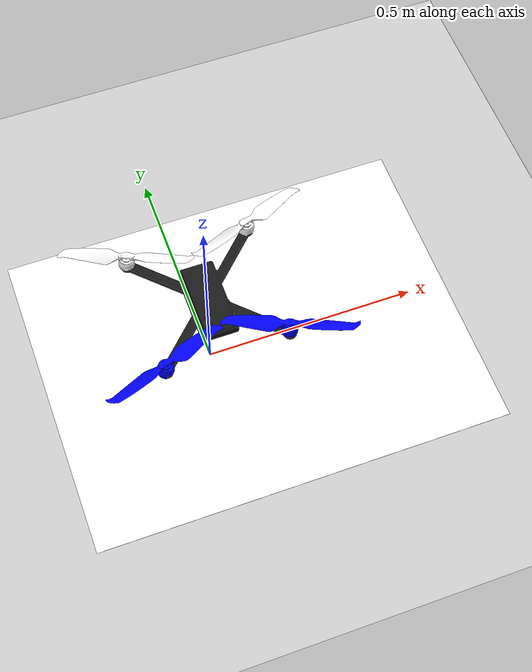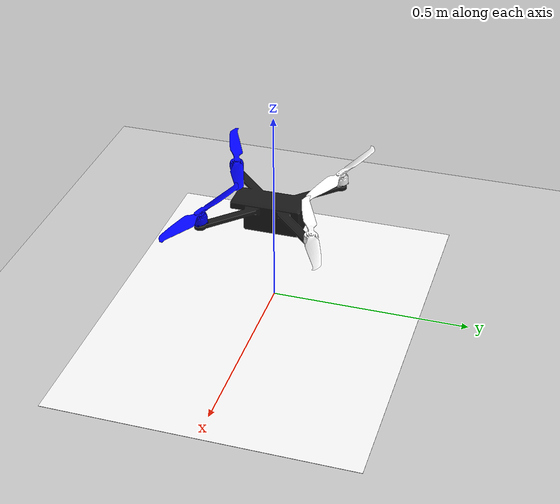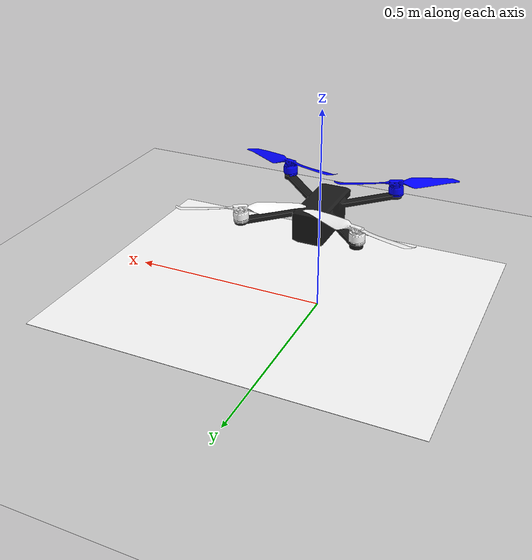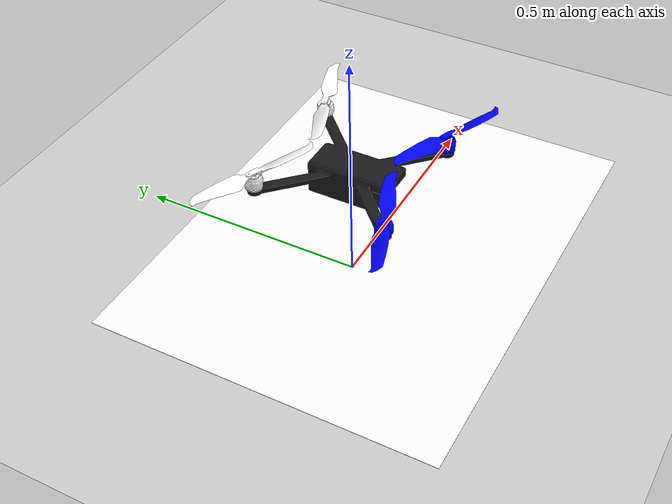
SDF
<?xml version="1.0" ?>
<sdf version="1.7">
  <world name="test_marioworld">
    <plugin filename="libignition-gazebo-physics-system.so"
      name="ignition::gazebo::systems::Physics">
    </plugin>
    <plugin filename="libignition-gazebo-user-commands-system.so"
      name="ignition::gazebo::systems::UserCommands">
    </plugin>
    <plugin filename="libignition-gazebo-scene-broadcaster-system.so"
      name="ignition::gazebo::systems::SceneBroadcaster">
    </plugin>
    <plugin filename="libignition-gazebo-imu-system.so"
      name="ignition::gazebo::systems::Imu">
    </plugin>
    <plugin filename="libignition-gazebo-navsat-system.so"
          name="ignition::gazebo::systems::NavSat">
    </plugin>
    <plugin filename="libignition-gazebo-sensors-system.so"
      name="ignition::gazebo::systems::Sensors">
    </plugin>

    <spherical_coordinates>
      <latitude_deg>-35.363262</latitude_deg>
      <longitude_deg>149.165237</longitude_deg>
      <elevation>584</elevation>
      <heading_deg>0</heading_deg>
      <surface_model>EARTH_WGS84</surface_model>
    </spherical_coordinates>

    <scene>
      <ambient>1.0 1.0 1.0</ambient>
      <background>0.8 0.8 0.8</background>
      <sky></sky>
    </scene>

    <gui fullscreen="0">

      <!-- 3D scene -->
      <plugin filename="MinimalScene" name="3D View">
        <gz-gui>
          <title>3D View</title>
          <property type="bool" key="showTitleBar">false</property>
          <property type="string" key="state">docked</property>
        </gz-gui>

        <engine>ogre2</engine>
        <scene>scene</scene>
        <ambient_light>0.4 0.4 0.4</ambient_light>
        <background_color>0.8 0.8 0.8</background_color>
        <camera_pose>-6 0 6 0 0.5 0</camera_pose>
      </plugin>

      <!-- Plugins that add functionality to the scene -->

      <!-- World control -->
      <plugin filename="WorldControl" name="World control">
        <gz-gui>
          <title>World control</title>
          <property type="bool" key="showTitleBar">false</property>
          <property type="bool" key="resizable">false</property>
          <property type="double" key="height">72</property>
          <property type="double" key="z">1</property>

          <property type="string" key="state">floating</property>
          <anchors target="3D View">
            <line own="left" target="left"/>
            <line own="bottom" target="bottom"/>
          </anchors>
        </gz-gui>

        <play_pause>true</play_pause>
        <step>true</step>
        <start_paused>true</start_paused>
        <use_event>true</use_event>

      </plugin>

      <!-- World statistics -->

      <!-- Inspector -->
      <plugin filename="ComponentInspector" name="Component inspector">
        <gz-gui>
          <property type="string" key="state">docked</property>
        </gz-gui>
      </plugin>

      <!-- Entity tree -->
      <plugin filename="EntityTree" name="Entity tree">
        <gz-gui>
          <property type="string" key="state">docked</property>
        </gz-gui>
      </plugin>

      <!-- Plugins -->
      <plugin filename="EntityContextMenuPlugin" name="Entity context menu">
        <gz-gui>
          <property key="state" type="string">floating</property>
          <property key="width" type="double">5</property>
          <property key="height" type="double">5</property>
          <property key="showTitleBar" type="bool">false</property>
        </gz-gui>
      </plugin>
      <plugin filename="GzSceneManager" name="Scene Manager">
        <gz-gui>
          <property key="resizable" type="bool">false</property>
          <property key="width" type="double">5</property>
          <property key="height" type="double">5</property>
          <property key="state" type="string">floating</property>
          <property key="showTitleBar" type="bool">false</property>
        </gz-gui>
      </plugin>
      <plugin filename="InteractiveViewControl" name="Interactive view control">
        <gz-gui>
          <property key="resizable" type="bool">false</property>
          <property key="width" type="double">5</property>
          <property key="height" type="double">5</property>
          <property key="state" type="string">floating</property>
          <property key="showTitleBar" type="bool">false</property>
        </gz-gui>
      </plugin>
    </gui>

    <light type="directional" name="sun">
      <cast_shadows>true</cast_shadows>
      <pose>0 0 10 0 0 0</pose>
      <diffuse>0.8 0.8 0.8 1</diffuse>
      <specular>0.8 0.8 0.8 1</specular>
      <attenuation>
        <range>1000</range>
        <constant>0.9</constant>
        <linear>0.01</linear>
        <quadratic>0.001</quadratic>
      </attenuation>
      <direction>-0.5 0.1 -0.9</direction>
    </light>

    <model name="ground_plane">
      <static>true</static>
      <link name="link">
        <collision name="collision">
          <geometry>
            <plane>
              <normal>0 0 1</normal>
              <size>1000 1000</size>
            </plane>
          </geometry>
        </collision>
        <visual name="visual">
          <geometry>
            <plane>
              <normal>0 0 1</normal>
              <size>1000 1000</size>
            </plane>
          </geometry>
          <material>
            <ambient>0.8 0.8 0.8 1</ambient>
            <diffuse>0.8 0.8 0.8 1</diffuse>
            <specular>0.8 0.8 0.8 1</specular>
          </material>
        </visual>
      </link>
    </model>

    <include>
      <uri>model://embedded_aruco</uri>
      <pose degrees="true">0.1 0 0.009 0 0 -90</pose>
    </include>

    <include>
      <uri>model://test_mario</uri>
      <pose degrees="true">0 0 0.2 0 0 0</pose>
    </include>

  </world>
</sdf>

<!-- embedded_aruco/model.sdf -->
<sdf version="1.9">
  <model name="embedded_aruco">
    <!-- Hazlo estático para que no caiga -->
    <static>true</static>

    <link name="marker_link">
      <!-- Visual: un plano con la textura de tu ArUco -->
      <visual name="marker_visual">
        <cast_shadows>false</cast_shadows>
        <geometry>
          <plane>
            <normal>0 0 1</normal>
            <!-- Ajusta aquí el tamaño en metros: 0.45×0.45 m -->
            <size>0.756 0.972</size>
          </plane>
        </geometry>
        <material>
          <ambient>1 1 1 1</ambient>
          <diffuse>1 1 1 1</diffuse>
          <pbr>
            <metal>
              <albedo_map>model://embedded_aruco/textures/chessboard1.png</albedo_map>
              <roughness>0.6</roughness>
              <metalness>0</metalness>
            </metal>
          </pbr>

        </material>
      </visual>

      <!-- Collision: idéntico al visual para detección de contacto -->
      <collision name="marker_collision">
        <geometry>
          <plane>
            <normal>0 0 1</normal>
            <size>0.25 0.25</size>
          </plane>
        </geometry>
      </collision>
    </link>
  </model>
</sdf>

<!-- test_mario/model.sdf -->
<sdf version='1.9'>
  <model name='dron_proto_3'>
    <pose degrees="true">0 0 0 0 0 0</pose>
    <self_collide>false</self_collide>
    <static>false</static>

    <link name='dron_base_link'>
      <pose degrees="true">0 0 0 0 0 0</pose>
      <inertial>
        <pose>1.373614158621583e-17 -0.0008831251289440345 0.04477388860190273 0 0 0</pose>
        <mass>1.085696975469769</mass>
        <inertia>
          <ixx>0.0037806451718603931</ixx>
          <ixy>-8.7544485002108219e-18</ixy>
          <ixz>3.3212538046287071e-18</ixz>
          <iyy>0.0023387732420122611</iyy>
          <iyz>0.00013395066766007041</iyz>
          <izz>0.0050191792659638797</izz>
        </inertia>
      </inertial>
      <collision name='dron_base_link_collision'>
        <pose>0 0 0 0 0 0</pose>
        <geometry>
          <mesh>
            <scale>0.001 0.001 0.001</scale>
            <uri>meshes/FAST_DESING-v21_DRONE_FAST.stl</uri>
          </mesh>
        </geometry>
      </collision>
      <visual name='dron_base_link_visual'>
        <pose>0 0 0 0 0 0</pose>
        <material>
          <ambient>0.1 0.1 0.1 1.0</ambient>
          <diffuse>0.1 0.1 0.1 1.0</diffuse>
          <specular>0.01 0.01 0.01 1.0</specular>
          <emissive>0 0 0 0</emissive>
        </material><material>
          <ambient>0.1 0.1 0.1 1.0</ambient>
          <diffuse>0.1 0.1 0.1 1.0</diffuse>
          <specular>0.01 0.01 0.01 1.0</specular>
          <emissive>0 0 0 0</emissive>
        </material>
        <geometry>
          <mesh>
            <scale>0.001 0.001 0.001</scale>
            <uri>meshes/FAST_DESING-v21_DRONE_FAST.stl</uri>
          </mesh>
        </geometry>
      </visual>
    </link>

    <!-- IMU Sensor Link -->
    <link name='imu_link'>
      <visual name='imu_visual'>
        <!-- Coloca el cubo justo encima del fuselaje, sin rotación -->
        <pose>0 0 0.0 0 0 0</pose>
        <geometry>
          <box>
            <!-- 2 cm × 2 cm × 2 cm -->
            <size>0.02 0.02 0.005</size>
          </box>
        </geometry>
        <material>
          <ambient>0 0 0 1.0</ambient>
          <diffuse>0 0 0 1.0</diffuse>
          <specular>0.01 0.01 0.01 1.0</specular>
          <emissive>0 0 0 0</emissive>
        </material>
      </visual>

      <inertial>
        <pose>0 0 0 0 0 0</pose>
        <mass>0.15</mass>
        <inertia>
          <ixx>0.00001</ixx>
          <ixy>0</ixy>
          <ixz>0</ixz>
          <iyy>0.00002</iyy>
          <iyz>0</iyz>
          <izz>0.00002</izz>
        </inertia>
      </inertial>
      <sensor name='imu_sensor' type='imu'>
        <!-- Déjalo en 0,0,0 si la pose visual ya está arriba -->
        <pose>0 0 0 3.141593 0 0</pose>
        <always_on>1</always_on>
        <update_rate>1000</update_rate>
      </sensor>
    </link>
    <!-- Fixed Joint: attach IMU to base -->
    <joint name='base_imu_joint' type='fixed'>
      <parent>dron_base_link</parent>
      <child>imu_link</child>
      <axis>
        <xyz>0 0 1</xyz>
        <limit>
          <lower>0</lower>
          <upper>0</upper>
          <effort>0</effort>
          <velocity>0</velocity>
        </limit>
        <dynamics>
          <damping>1.0</damping>
        </dynamics>
        <use_parent_model_frame>1</use_parent_model_frame>
      </axis>
      <physics>
        <ode>
          <implicit_spring_damper>1</implicit_spring_damper>
        </ode>
      </physics>
    </joint>

    <!-- Rotors / Motors -->
    <!-- Rotor 0 -->
    <link name='rotor_0'>
      <pose>-0.1369949465597693 -0.1409949525282165 0.06699999703797575 0 0 0</pose>
      <inertial>
        <pose>0 0 0 0 -0 0</pose>
        <mass>0.025</mass>
        <inertia>
          <ixx>9.75e-06</ixx>
          <ixy>0</ixy>
          <ixz>0</ixz>
          <iyy>0.000166704</iyy>
          <iyz>0</iyz>
          <izz>0.000167604</izz>
        </inertia>
      </inertial>
      <collision name='rotor_0_collision'>
        <pose>0 0 0 0 -0 0</pose>
        <geometry>
          <cylinder>
            <length>0.005</length>
            <radius>0.1</radius>
          </cylinder>
        </geometry>
        <surface>
          <contact>
            <ode/>
          </contact>
          <friction>
            <ode/>
          </friction>
        </surface>
      </collision>
      <visual name='rotor_0_visual'>
        <pose>0 0 0 0 -0 0</pose>
        <geometry>
          <mesh>
            <scale>1 1 1</scale>
            <uri>model://iris_with_standoffs/meshes/iris_prop_ccw.dae</uri>
          </mesh>
        </geometry>
        <material>
          <ambient>0 0 1</ambient>
          <diffuse>0 0 1</diffuse>
          <specular>0.1 0.1 0.1 1</specular>
        </material>
      </visual>
      <gravity>1</gravity>
      <velocity_decay/>
      <self_collide>0</self_collide>
    </link>
    <joint name='rotor_0_joint' type='revolute'>
      <child>rotor_0</child>
      <parent>dron_base_link</parent>
      <axis>
        <xyz>0 0 1</xyz>
        <limit>
          <lower>-1e+16</lower>
          <upper>1e+16</upper>
        </limit>
        <dynamics>
          <damping>0.004</damping>
        </dynamics>
        <use_parent_model_frame>1</use_parent_model_frame>
      </axis>
      <physics>
        <ode>
          <implicit_spring_damper>1</implicit_spring_damper>
        </ode>
      </physics>
    </joint>
    <link name='rotor_1'>
      <pose>0.1369949534402301 0.1329949474717836 0.06699999703797579 0 0 0</pose>
      <inertial>
        <pose>0 0 0 0 -0 0</pose>
        <mass>0.025</mass>
        <inertia>
          <ixx>9.75e-06</ixx>
          <ixy>0</ixy>
          <ixz>0</ixz>
          <iyy>0.000166704</iyy>
          <iyz>0</iyz>
          <izz>0.000167604</izz>
        </inertia>
      </inertial>
      <collision name='rotor_1_collision'>
        <pose>0 0 0 0 -0 0</pose>
        <geometry>
          <cylinder>
            <length>0.005</length>
            <radius>0.1</radius>
          </cylinder>
        </geometry>
        <surface>
          <contact>
            <ode/>
          </contact>
          <friction>
            <ode/>
          </friction>
        </surface>
      </collision>
      <visual name='rotor_1_visual'>
        <pose>0 0 0 0 -0 0</pose>
        <geometry>
          <mesh>
            <scale>1 1 1</scale>
            <uri>model://iris_with_standoffs/meshes/iris_prop_ccw.dae</uri>
          </mesh>
        </geometry>
        <material>
          <ambient>1 1 1 1</ambient>
          <diffuse>1 1 1 1</diffuse>
          <specular>.1 .1 .1 1</specular>
        </material>
      </visual>
      <gravity>1</gravity>
      <velocity_decay/>
      <self_collide>0</self_collide>
    </link>
    <joint name='rotor_1_joint' type='revolute'>
      <child>rotor_1</child>
      <parent>dron_base_link</parent>
      <axis>
        <xyz>0 0 1</xyz>
        <limit>
          <lower>-1e+16</lower>
          <upper>1e+16</upper>
        </limit>
        <dynamics>
          <damping>0.004</damping>
        </dynamics>
        <use_parent_model_frame>1</use_parent_model_frame>
      </axis>
      <physics>
        <ode>
          <implicit_spring_damper>1</implicit_spring_damper>
        </ode>
      </physics>
    </joint>
    <link name='rotor_2'>
      <pose>0.1369949465597693 -0.1409949525282165 0.06699999703797575 0 0 0</pose>
      <inertial>
        <pose>0 0 0 0 -0 0</pose>
        <mass>0.025</mass>
        <inertia>
          <ixx>9.75e-06</ixx>
          <ixy>0</ixy>
          <ixz>0</ixz>
          <iyy>0.000166704</iyy>
          <iyz>0</iyz>
          <izz>0.000167604</izz>
        </inertia>
      </inertial>
      <collision name='rotor_2_collision'>
        <pose>0 0 0 0 -0 0</pose>
        <geometry>
          <cylinder>
            <length>0.005</length>
            <radius>0.1</radius>
          </cylinder>
        </geometry>
        <surface>
          <contact>
            <ode/>
          </contact>
          <friction>
            <ode/>
          </friction>
        </surface>
      </collision>
      <visual name='rotor_2_visual'>
        <pose>0 0 0 0 -0 0</pose>
        <geometry>
          <mesh>
            <scale>1 1 1</scale>
            <uri>model://iris_with_standoffs/meshes/iris_prop_cw.dae</uri>
          </mesh>
        </geometry>
        <material>
          <ambient>0 0 1</ambient>
          <diffuse>0 0 1</diffuse>
          <specular>0.1 0.1 0.1 1</specular>
        </material>
      </visual>
      <gravity>1</gravity>
      <velocity_decay/>
      <self_collide>0</self_collide>
    </link>
    <joint name='rotor_2_joint' type='revolute'>
      <child>rotor_2</child>
      <parent>dron_base_link</parent>
      <axis>
        <xyz>0 0 1</xyz>
        <limit>
          <lower>-1e+16</lower>
          <upper>1e+16</upper>
        </limit>
        <dynamics>
          <damping>0.004</damping>
        </dynamics>
        <use_parent_model_frame>1</use_parent_model_frame>
      </axis>
      <physics>
        <ode>
          <implicit_spring_damper>1</implicit_spring_damper>
        </ode>
      </physics>
    </joint>
    <link name='rotor_3'>
      <pose>-0.1369949534402301 0.1329949474717836 0.06699999703797579 0 0 0</pose>
      <inertial>
        <pose>0 0 0 0 -0 0</pose>
        <mass>0.025</mass>
        <inertia>
          <ixx>9.75e-06</ixx>
          <ixy>0</ixy>
          <ixz>0</ixz>
          <iyy>0.000166704</iyy>
          <iyz>0</iyz>
          <izz>0.000167604</izz>
        </inertia>
      </inertial>
      <collision name='rotor_3_collision'>
        <pose>0 0 0 0 -0 0</pose>
        <geometry>
          <cylinder>
            <length>0.005</length>
            <radius>0.1</radius>
          </cylinder>
        </geometry>
        <surface>
          <contact>
            <ode/>
          </contact>
          <friction>
            <ode/>
          </friction>
        </surface>
      </collision>
      <visual name='rotor_3_visual'>
        <pose>0 0 0 0 -0 0</pose>
        <geometry>
          <mesh>
            <scale>1 1 1</scale>
            <uri>model://iris_with_standoffs/meshes/iris_prop_cw.dae</uri>
          </mesh>
        </geometry>
        <material>
          <ambient>1 1 1 1</ambient>
          <diffuse>1 1 1 1</diffuse>
          <specular>.1 .1 .1 1</specular>
        </material>
      </visual>
      <gravity>1</gravity>
      <velocity_decay/>
      <self_collide>0</self_collide>
    </link>
    <joint name='rotor_3_joint' type='revolute'>
      <child>rotor_3</child>
      <parent>dron_base_link</parent>
      <axis>
        <xyz>0 0 1</xyz>
        <limit>
          <lower>-1e+16</lower>
          <upper>1e+16</upper>
        </limit>
        <dynamics>
          <damping>0.004</damping>
        </dynamics>
        <use_parent_model_frame>1</use_parent_model_frame>
      </axis>
      <physics>
        <ode>
          <implicit_spring_damper>1</implicit_spring_damper>
        </ode>
      </physics>
    </joint>
    <static>0</static>

    <!-- FISICAS REALISTAS -->

    <!-- Estado de articulaciones -->
    <plugin filename="libignition-gazebo-joint-state-publisher-system.so"
      name="ignition::gazebo::systems::JointStatePublisher">
    </plugin>

    <!--  Lift & Drag Plugins  -->

    <!-- Plugin for rotor 0 -->
    <plugin filename="libignition-gazebo-lift-drag-system.so"
        name="ignition::gazebo::systems::LiftDrag">
      <a0>0.3</a0>
      <alpha_stall>1.4</alpha_stall>
      <cla>4.2500</cla>
      <cda>0.10</cda>
      <cma>0.00</cma>
      <cla_stall>-0.025</cla_stall>
      <cda_stall>0.0</cda_stall>
      <cma_stall>0.0</cma_stall>
      <area>0.002</area>
      <air_density>1.2041</air_density>
      <cp>0.084 0 0</cp>
      <forward>0 1 0</forward>
      <upward>0 0 1</upward>
      <link_name>rotor_0</link_name>
    </plugin>
    <plugin filename="libignition-gazebo-lift-drag-system.so"
        name="ignition::gazebo::systems::LiftDrag">
      <a0>0.3</a0>
      <alpha_stall>1.4</alpha_stall>
      <cla>4.2500</cla>
      <cda>0.10</cda>
      <cma>0.00</cma>
      <cla_stall>-0.025</cla_stall>
      <cda_stall>0.0</cda_stall>
      <cma_stall>0.0</cma_stall>
      <area>0.002</area>
      <air_density>1.2041</air_density>
      <cp>-0.084 0 0</cp>
      <forward>0 -1 0</forward>
      <upward>0 0 1</upward>
      <link_name>rotor_0</link_name>
    </plugin>

    <!-- Plugin for rotor 1 -->
    <plugin filename="libignition-gazebo-lift-drag-system.so"
        name="ignition::gazebo::systems::LiftDrag">
      <a0>0.3</a0>
      <alpha_stall>1.4</alpha_stall>
      <cla>4.2500</cla>
      <cda>0.10</cda>
      <cma>0.00</cma>
      <cla_stall>-0.025</cla_stall>
      <cda_stall>0.0</cda_stall>
      <cma_stall>0.0</cma_stall>
      <area>0.002</area>
      <air_density>1.2041</air_density>
      <cp>0.084 0 0</cp>
      <forward>0 1 0</forward>
      <upward>0 0 1</upward>
      <link_name>rotor_1</link_name>
    </plugin>
    <plugin filename="libignition-gazebo-lift-drag-system.so"
        name="ignition::gazebo::systems::LiftDrag">
      <a0>0.3</a0>
      <alpha_stall>1.4</alpha_stall>
      <cla>4.2500</cla>
      <cda>0.10</cda>
      <cma>0.00</cma>
      <cla_stall>-0.025</cla_stall>
      <cda_stall>0.0</cda_stall>
      <cma_stall>0.0</cma_stall>
      <area>0.002</area>
      <air_density>1.2041</air_density>
      <cp>-0.084 0 0</cp>
      <forward>0 -1 0</forward>
      <upward>0 0 1</upward>
      <link_name>rotor_1</link_name>
    </plugin>

    <!-- Plugin for rotor 2 -->
    <plugin filename="libignition-gazebo-lift-drag-system.so"
        name="ignition::gazebo::systems::LiftDrag">
      <a0>0.3</a0>
      <alpha_stall>1.4</alpha_stall>
      <cla>4.2500</cla>
      <cda>0.10</cda>
      <cma>0.00</cma>
      <cla_stall>-0.025</cla_stall>
      <cda_stall>0.0</cda_stall>
      <cma_stall>0.0</cma_stall>
      <area>0.002</area>
      <air_density>1.2041</air_density>
      <cp>0.084 0 0</cp>
      <forward>0 -1 0</forward>
      <upward>0 0 1</upward>
      <link_name>rotor_2</link_name>
    </plugin>
    <plugin filename="libignition-gazebo-lift-drag-system.so"
        name="ignition::gazebo::systems::LiftDrag">
      <a0>0.3</a0>
      <alpha_stall>1.4</alpha_stall>
      <cla>4.2500</cla>
      <cda>0.10</cda>
      <cma>0.00</cma>
      <cla_stall>-0.025</cla_stall>
      <cda_stall>0.0</cda_stall>
      <cma_stall>0.0</cma_stall>
      <area>0.002</area>
      <air_density>1.2041</air_density>
      <cp>-0.084 0 0</cp>
      <forward>0 1 0</forward>
      <upward>0 0 1</upward>
      <link_name>rotor_2</link_name>
    </plugin>

    <!-- Plugin for rotor 3 -->
    <plugin filename="libignition-gazebo-lift-drag-system.so"
        name="ignition::gazebo::systems::LiftDrag">
      <a0>0.3</a0>
      <alpha_stall>1.4</alpha_stall>
      <cla>4.2500</cla>
      <cda>0.10</cda>
      <cma>0.00</cma>
      <cla_stall>-0.025</cla_stall>
      <cda_stall>0.0</cda_stall>
      <cma_stall>0.0</cma_stall>
      <area>0.002</area>
      <air_density>1.2041</air_density>
      <cp>0.084 0 0</cp>
      <forward>0 -1 0</forward>
      <upward>0 0 1</upward>
      <link_name>rotor_3</link_name>
    </plugin>
    <plugin filename="libignition-gazebo-lift-drag-system.so"
        name="ignition::gazebo::systems::LiftDrag">
      <a0>0.3</a0>
      <alpha_stall>1.4</alpha_stall>
      <cla>4.2500</cla>
      <cda>0.10</cda>
      <cma>0.00</cma>
      <cla_stall>-0.025</cla_stall>
      <cda_stall>0.0</cda_stall>
      <cma_stall>0.0</cma_stall>
      <area>0.002</area>
      <air_density>1.2041</air_density>
      <cp>-0.084 0 0</cp>
      <forward>0 1 0</forward>
      <upward>0 0 1</upward>
      <link_name>rotor_3</link_name>
    </plugin>
    <!-- ARDUPILOT PLUGIN -->

    <plugin name="ArduPilotPlugin" filename="libArduPilotPlugin.so">
      <!-- Dirección IP y puerto para comunicación -->
      <fdm_addr>127.0.0.1</fdm_addr>
      <fdm_port_in>9002</fdm_port_in>
      <connectionTimeoutMaxCount>5</connectionTimeoutMaxCount>
      <lock_step>1</lock_step>

      <!-- Conversión de coordenadas -->
      <modelXYZToAirplaneXForwardZDown degrees="true">0 0 0 0 180 0</modelXYZToAirplaneXForwardZDown>
      <gazeboXYZToNED degrees="true">0 0 0 180 0 0</gazeboXYZToNED>

      <!-- Sensor IMU -->
      <imuName>imu_sensor</imuName>

      <!-- Configuración de los motores -->
      <control channel="0">
        <jointName>rotor_0_joint</jointName>
        <useForce>1</useForce>
        <multiplier>838</multiplier>
        <offset>0</offset>
        <servo_min>1100</servo_min>
        <servo_max>1900</servo_max>
        <deadband>50</deadband>
        <type>VELOCITY</type>
        <p_gain>0.05</p_gain>
        <i_gain>0</i_gain>
        <d_gain>0</d_gain>
        <i_max>0</i_max>
        <i_min>0</i_min>
        <cmd_max>2.5</cmd_max>
        <cmd_min>-2.5</cmd_min>
        <controlVelocitySlowdownSim>1</controlVelocitySlowdownSim>
      </control>

      <control channel="1">
        <jointName>rotor_1_joint</jointName>
        <useForce>1</useForce>
        <multiplier>838</multiplier>
        <offset>0</offset>
        <servo_min>1100</servo_min>
        <servo_max>1900</servo_max>
        <deadband>50</deadband>
        <type>VELOCITY</type>
        <p_gain>0.05</p_gain>
        <i_gain>0</i_gain>
        <d_gain>0</d_gain>
        <i_max>0</i_max>
        <i_min>0</i_min>
        <cmd_max>2.5</cmd_max>
        <cmd_min>-2.5</cmd_min>
        <controlVelocitySlowdownSim>1</controlVelocitySlowdownSim>
      </control>

      <control channel="2">
        <jointName>rotor_2_joint</jointName>
        <useForce>1</useForce>
        <multiplier>-838</multiplier>
        <offset>0</offset>
        <servo_min>1100</servo_min>
        <servo_max>1900</servo_max>
        <deadband>50</deadband>
        <type>VELOCITY</type>
        <p_gain>0.05</p_gain>
        <i_gain>0</i_gain>
        <d_gain>0</d_gain>
        <i_max>0</i_max>
        <i_min>0</i_min>
        <cmd_max>2.5</cmd_max>
        <cmd_min>-2.5</cmd_min>
        <controlVelocitySlowdownSim>1</controlVelocitySlowdownSim>
      </control>

      <control channel="3">
        <jointName>rotor_3_joint</jointName>
        <useForce>1</useForce>
        <multiplier>-838</multiplier>
        <offset>0</offset>
        <servo_min>1100</servo_min>
        <servo_max>1900</servo_max>
        <deadband>50</deadband>
        <type>VELOCITY</type>
        <p_gain>0.05</p_gain>
        <i_gain>0</i_gain>
        <d_gain>0</d_gain>
        <i_max>0</i_max>
        <i_min>0</i_min>
        <cmd_max>2.5</cmd_max>
        <cmd_min>-2.5</cmd_min>
        <controlVelocitySlowdownSim>1</controlVelocitySlowdownSim>
      </control>

      <!-- Gimbal control -->
      <!-- En realidad es 10 -->

      <!-- En realidad es 11 -->

      <!-- En realidad es 12 -->

    </plugin>

  </model>
</sdf>
